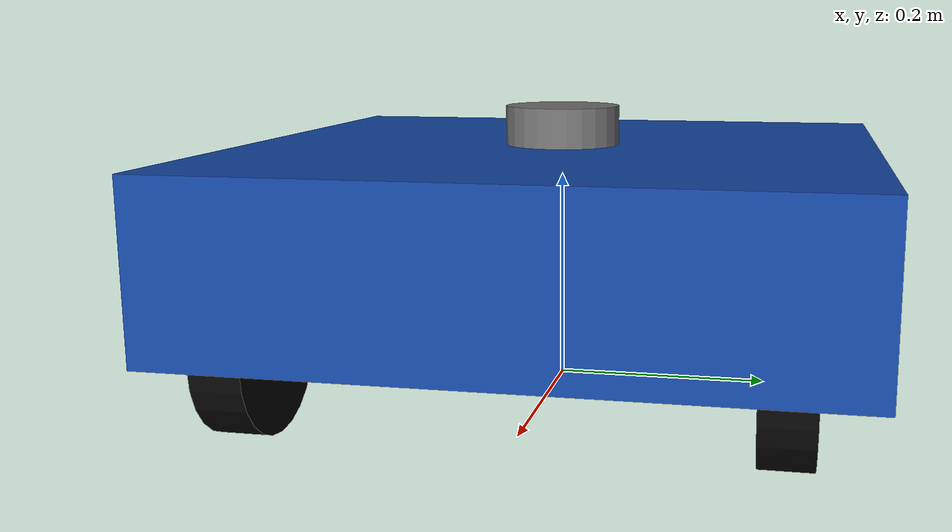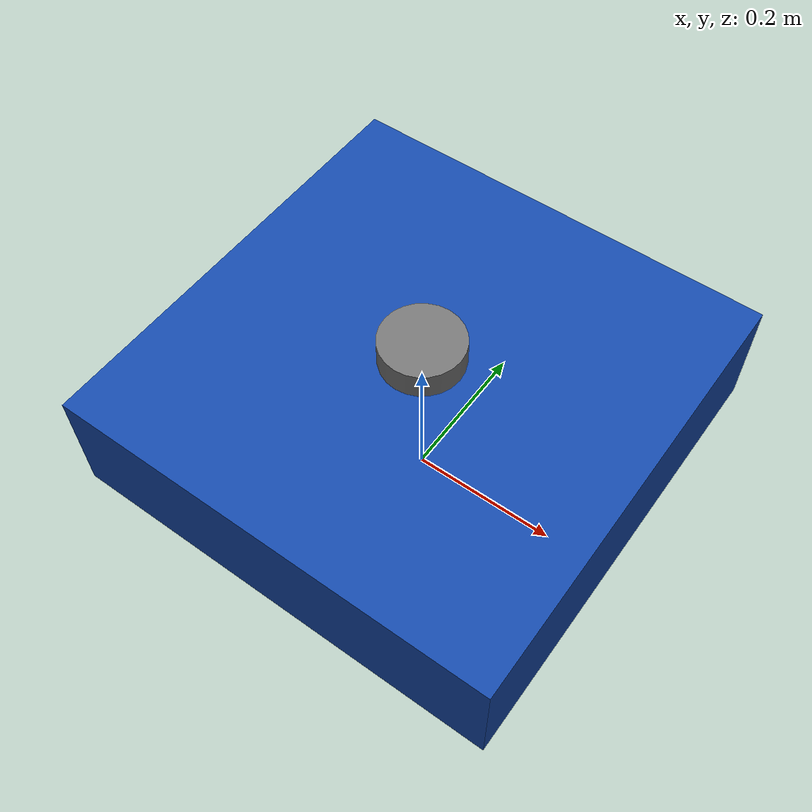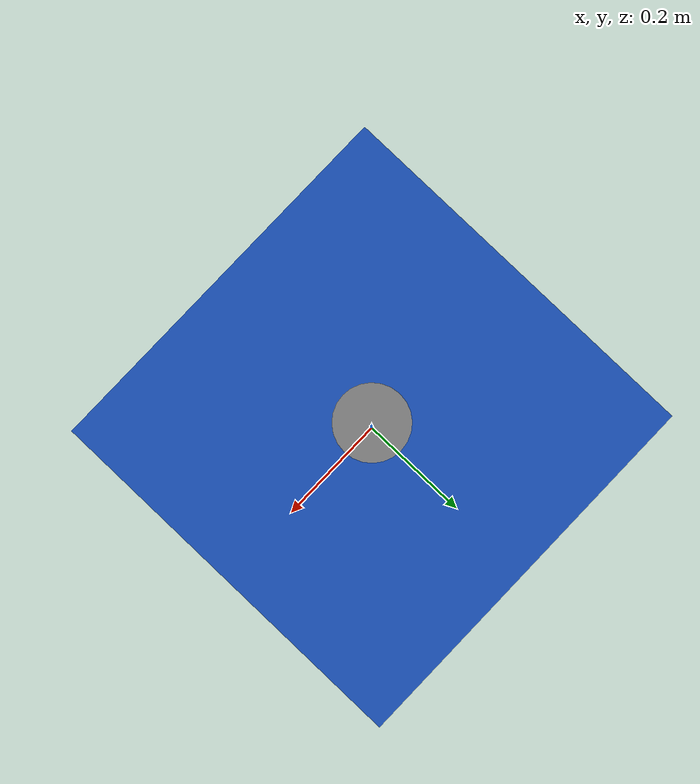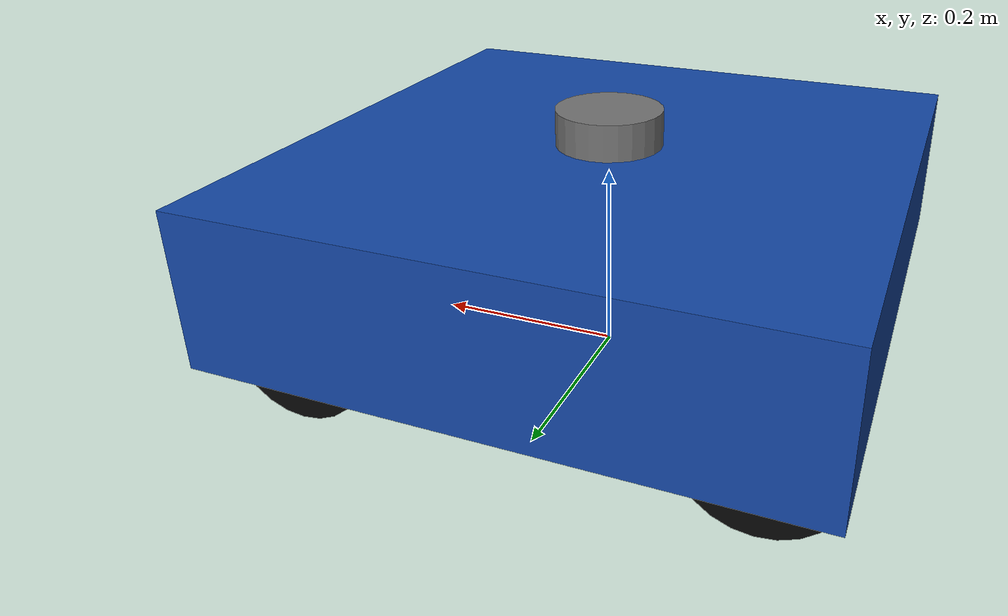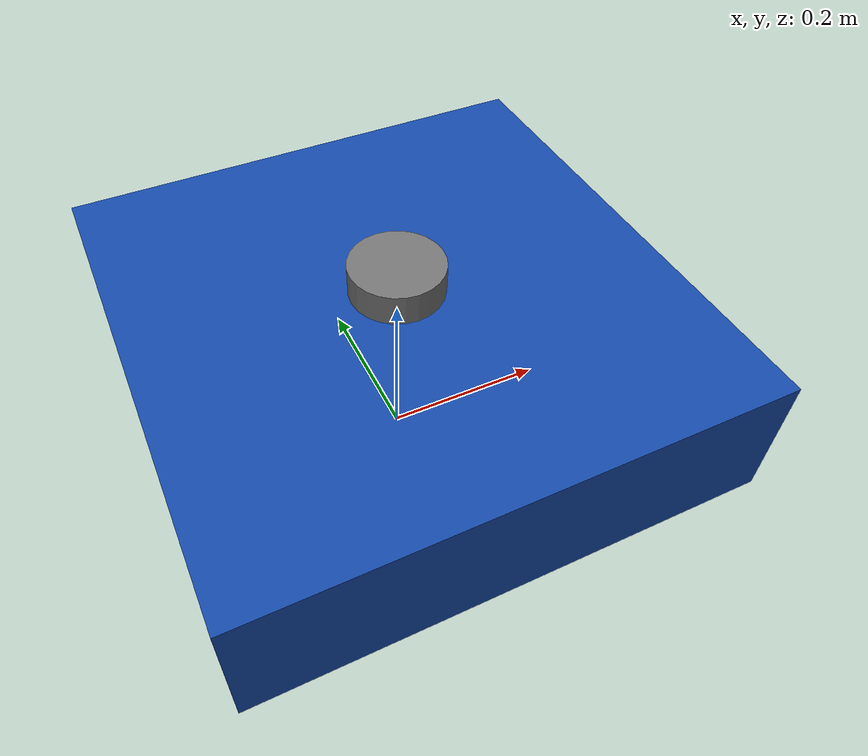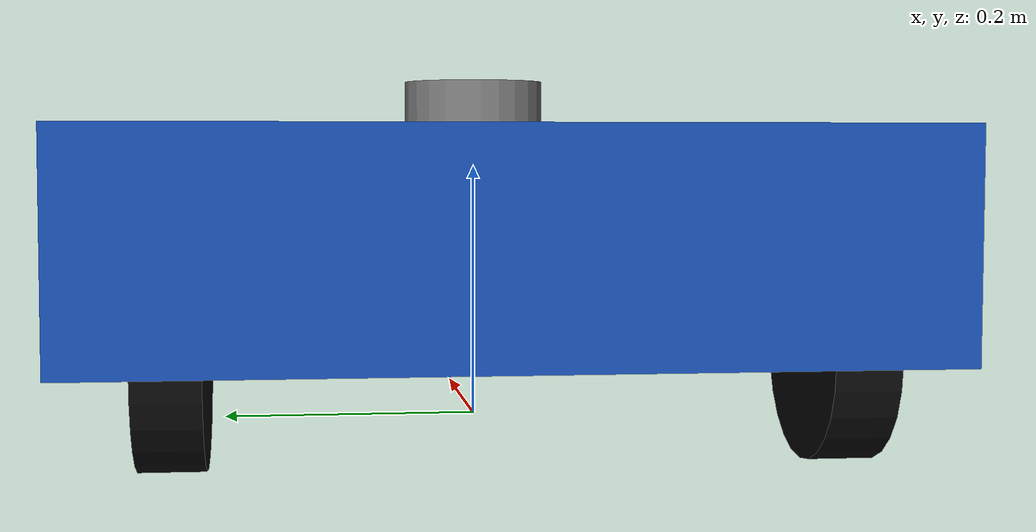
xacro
<?xml version="1.0"?>
<robot xmlns:xacro="http://www.ros.org/wiki/xacro" name="builder_robot">

  <!-- ===================== Dimensions ===================== -->
  <xacro:property name="body_x" value="0.60"/>
  <xacro:property name="body_y" value="0.60"/>
  <xacro:property name="body_z" value="0.16"/>
  <xacro:property name="body_mass" value="15.0"/>

  <xacro:property name="wheel_radius" value="0.075"/>
  <xacro:property name="wheel_width" value="0.045"/>
  <xacro:property name="wheel_x" value="0.225"/>
  <xacro:property name="wheel_y" value="0.225"/>
  <xacro:property name="wheel_z" value="0.075"/>

  <xacro:property name="lidar_z" value="0.24"/>
  <xacro:property name="imu_z" value="0.16"/>

  <!-- ===================== Materials ===================== -->
  <material name="builder_blue">
    <color rgba="0.08 0.28 0.65 1.0"/>
  </material>
  <material name="builder_black">
    <color rgba="0.03 0.03 0.03 1.0"/>
  </material>
  <material name="builder_gray">
    <color rgba="0.45 0.45 0.45 1.0"/>
  </material>

  <!-- ===================== Base ===================== -->
  <link name="base_footprint"/>

  <joint name="base_footprint_to_base_link" type="fixed">
    <parent link="base_footprint"/>
    <child link="base_link"/>
    <origin xyz="0 0 0.15" rpy="0 0 0"/>
  </joint>

  <link name="base_link">
    <inertial>
      <origin xyz="0 0 0" rpy="0 0 0"/>
      <mass value="${body_mass}"/>
      <inertia ixx="0.55" ixy="0" ixz="0"
               iyy="0.55" iyz="0" izz="0.85"/>
    </inertial>
    <visual>
      <origin xyz="0 0 0" rpy="0 0 0"/>
      <geometry><box size="${body_x} ${body_y} ${body_z}"/></geometry>
      <material name="builder_blue"/>
    </visual>
    <collision>
      <origin xyz="0 0 0" rpy="0 0 0"/>
      <geometry><box size="${body_x} ${body_y} ${body_z}"/></geometry>
    </collision>
  </link>

  <!-- ===================== Wheel macro ===================== -->
  <xacro:macro name="mecanum_wheel" params="name x y side roller_sign">
    <link name="${name}_wheel">
      <inertial>
        <origin xyz="0 0 0" rpy="0 0 0"/>
        <mass value="0.7"/>
        <inertia ixx="0.002" ixy="0" ixz="0"
                 iyy="0.002" iyz="0" izz="0.002"/>
      </inertial>

      <!-- Wheel axis is local Y. The visual is a cylinder whose axis is Y. -->
      <visual>
        <origin xyz="0 0 0" rpy="${pi/2} 0 0"/>
        <geometry>
          <cylinder radius="${wheel_radius}" length="${wheel_width}"/>
        </geometry>
        <material name="builder_black"/>
      </visual>

      <collision>
        <origin xyz="0 0 0" rpy="${pi/2} 0 0"/>
        <geometry>
          <cylinder radius="${wheel_radius}" length="${wheel_width}"/>
        </geometry>
        <surface>
          <friction>
            <ode>
              <mu>1.2</mu>
              <mu2>0.08</mu2>
              <fdir1>${0.70710678*roller_sign} ${0.70710678} 0</fdir1>
              <slip1>0.02</slip1>
              <slip2>0.02</slip2>
            </ode>
          </friction>
        </surface>
      </collision>
    </link>

    <joint name="${name}_wheel_joint" type="continuous">
      <parent link="base_link"/>
      <child link="${name}_wheel"/>
      <origin xyz="${x} ${y} ${wheel_z - 0.15}" rpy="0 0 0"/>
      <axis xyz="0 1 0"/>
    </joint>
  </xacro:macro>

  <!-- roller_sign gives the two diagonal friction directions used to approximate
       the alternating Mecanum roller orientation. -->
  <xacro:mecanum_wheel name="front_left"  x="${wheel_x}"  y="${wheel_y}"  side="left"  roller_sign="1"/>
  <xacro:mecanum_wheel name="front_right" x="${wheel_x}"  y="${-wheel_y}" side="right" roller_sign="-1"/>
  <xacro:mecanum_wheel name="rear_left"   x="${-wheel_x}" y="${wheel_y}"  side="left"  roller_sign="-1"/>
  <xacro:mecanum_wheel name="rear_right"  x="${-wheel_x}" y="${-wheel_y}" side="right" roller_sign="1"/>

  <!-- ===================== LiDAR ===================== -->
  <link name="laser_link">
    <inertial>
      <mass value="0.15"/>
      <inertia ixx="0.0001" ixy="0" ixz="0" iyy="0.0001" iyz="0" izz="0.0001"/>
    </inertial>
    <visual>
      <origin xyz="0 0 0" rpy="0 0 0"/>
      <geometry><cylinder radius="0.055" length="0.055"/></geometry>
      <material name="builder_gray"/>
    </visual>
  </link>

  <joint name="laser_joint" type="fixed">
    <parent link="base_link"/>
    <child link="laser_link"/>
    <origin xyz="0 0 ${lidar_z - 0.15}" rpy="0 0 0"/>
  </joint>

  <gazebo reference="laser_link">
    <sensor name="builder_lidar" type="gpu_lidar">
      <topic>/scan</topic>
      <gz_frame_id>laser_link</gz_frame_id>
      <update_rate>15</update_rate>
      <always_on>true</always_on>
      <visualize>false</visualize>
      <ray>
        <scan>
          <horizontal>
            <samples>720</samples>
            <resolution>1</resolution>
            <min_angle>-3.14159265</min_angle>
            <max_angle>3.14159265</max_angle>
          </horizontal>
        </scan>
        <range>
          <min>0.10</min>
          <max>12.0</max>
          <resolution>0.01</resolution>
        </range>
      </ray>
    </sensor>
  </gazebo>

  <!-- ===================== IMU ===================== -->
  <link name="imu_link">
    <inertial>
      <mass value="0.05"/>
      <inertia ixx="0.00001" ixy="0" ixz="0" iyy="0.00001" iyz="0" izz="0.00001"/>
    </inertial>
  </link>

  <joint name="imu_joint" type="fixed">
    <parent link="base_link"/>
    <child link="imu_link"/>
    <origin xyz="0 0 ${imu_z - 0.15}" rpy="0 0 0"/>
  </joint>

  <gazebo reference="imu_link">
    <sensor name="builder_imu" type="imu">
      <topic>/imu</topic>
      <update_rate>100</update_rate>
      <always_on>true</always_on>
      <visualize>false</visualize>
      <imu>
        <angular_velocity>
          <x><noise type="gaussian"><mean>0.0</mean><stddev>0.002</stddev></noise></x>
          <y><noise type="gaussian"><mean>0.0</mean><stddev>0.002</stddev></noise></y>
          <z><noise type="gaussian"><mean>0.0</mean><stddev>0.003</stddev></noise></z>
        </angular_velocity>
        <linear_acceleration>
          <x><noise type="gaussian"><mean>0.0</mean><stddev>0.02</stddev></noise></x>
          <y><noise type="gaussian"><mean>0.0</mean><stddev>0.02</stddev></noise></y>
          <z><noise type="gaussian"><mean>0.0</mean><stddev>0.03</stddev></noise></z>
        </linear_acceleration>
      </imu>
    </sensor>
  </gazebo>

  <!-- ===================== ros2_control ===================== -->
  <ros2_control name="GazeboSimSystem" type="system">
    <hardware>
      <plugin>gz_ros2_control/GazeboSimSystem</plugin>
    </hardware>

    <joint name="front_left_wheel_joint">
      <command_interface name="velocity">
        <param name="min">-30</param>
        <param name="max">30</param>
      </command_interface>
      <state_interface name="position"/>
      <state_interface name="velocity"/>
    </joint>

    <joint name="front_right_wheel_joint">
      <command_interface name="velocity">
        <param name="min">-30</param>
        <param name="max">30</param>
      </command_interface>
      <state_interface name="position"/>
      <state_interface name="velocity"/>
    </joint>

    <joint name="rear_left_wheel_joint">
      <command_interface name="velocity">
        <param name="min">-30</param>
        <param name="max">30</param>
      </command_interface>
      <state_interface name="position"/>
      <state_interface name="velocity"/>
    </joint>

    <joint name="rear_right_wheel_joint">
      <command_interface name="velocity">
        <param name="min">-30</param>
        <param name="max">30</param>
      </command_interface>
      <state_interface name="position"/>
      <state_interface name="velocity"/>
    </joint>
  </ros2_control>

  <gazebo>
    <plugin filename="libgz_ros2_control-system.so"
            name="gz_ros2_control::GazeboSimROS2ControlPlugin">
      <parameters>$(find builder_robot_sim)/config/controllers.yaml</parameters>
    </plugin>
  </gazebo>

</robot>
